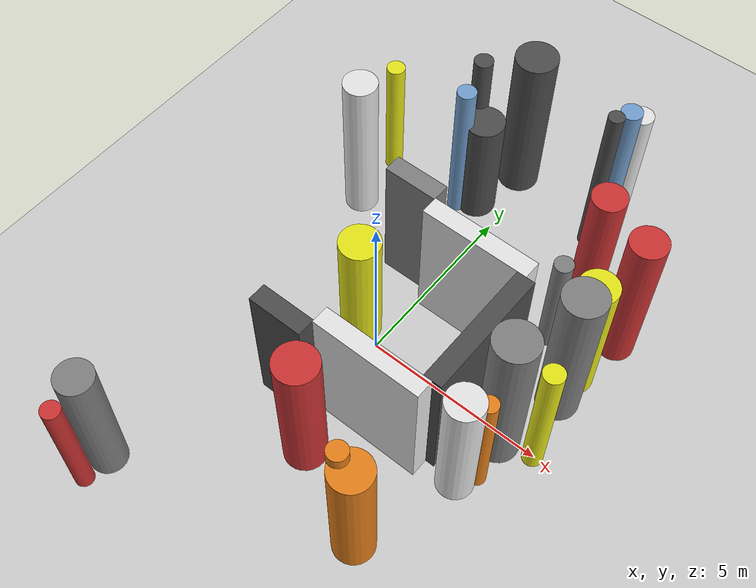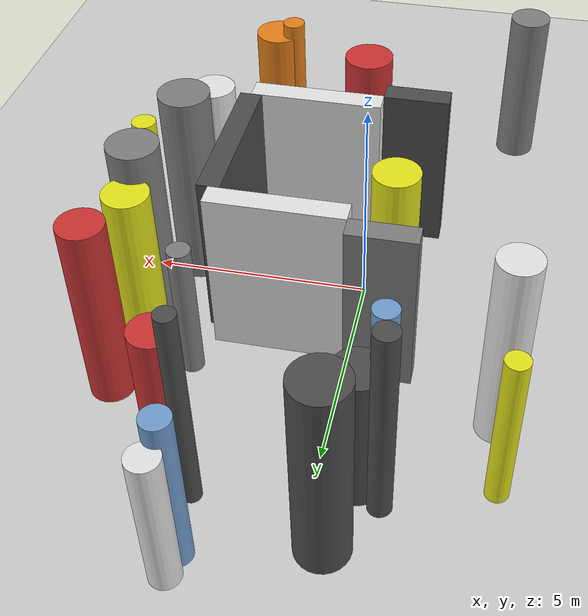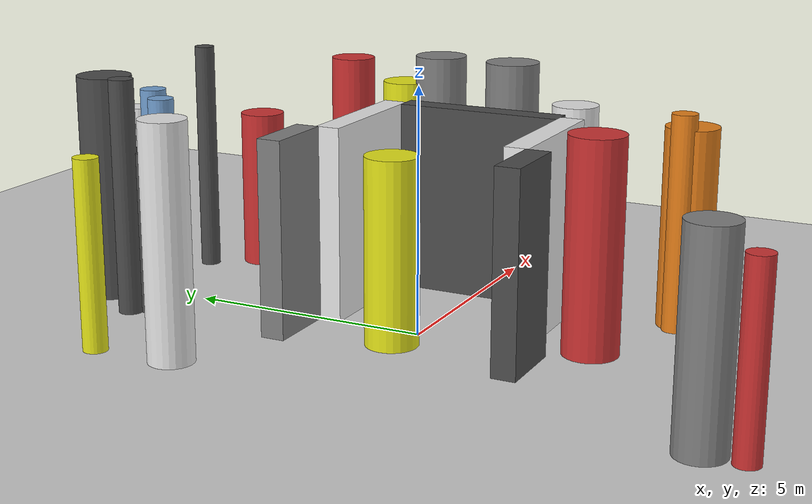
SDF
<?xml version='1.0'?>
<sdf version='1.6'>
  <world name='routeA_rl_v1__dense_recovery__rl_train__cul_de_sac_trap__000076'>
    <!-- Sun light -->
    <light name='sun' type='directional'>
      <cast_shadows>1</cast_shadows>
      <pose>0 0 10 0 0 0</pose>
      <diffuse>0.8 0.8 0.8 1</diffuse>
      <specular>0.2 0.2 0.2 1</specular>
      <attenuation>
        <range>1000</range>
        <constant>0.9</constant>
        <linear>0.01</linear>
        <quadratic>0.001</quadratic>
      </attenuation>
      <direction>-0.5 0.1 -0.9</direction>
    </light>

    <!-- Ground plane -->
    <model name='ground_plane'>
      <static>1</static>
      <link name='link'>
        <collision name='collision'>
          <geometry>
            <plane>
              <normal>0 0 1</normal>
              <size>100 100</size>
            </plane>
          </geometry>
          <surface>
            <contact>
              <collide_bitmask>65535</collide_bitmask>
              <ode/>
            </contact>
            <friction>
              <ode>
                <mu>100</mu>
                <mu2>50</mu2>
              </ode>
              <torsional><ode/></torsional>
            </friction>
            <bounce/>
          </surface>
          <max_contacts>10</max_contacts>
        </collision>
        <visual name='visual'>
          <cast_shadows>0</cast_shadows>
          <geometry>
            <plane>
              <normal>0 0 1</normal>
              <size>100 100</size>
            </plane>
          </geometry>
          <material>
            <script>
              <uri>file://media/materials/scripts/gazebo.material</uri>
              <n>Gazebo/Grey</n>
            </script>
          </material>
        </visual>
      </link>
    </model>

    <!-- Environment -->
    <magnetic_field>6e-06 2.3e-05 -4.2e-05</magnetic_field>
    <atmosphere type='adiabatic'/>
    <physics name='default_physics' default='0' type='ode'>
      <gravity>0 0 -9.8</gravity>
      <max_step_size>0.004</max_step_size>
      <real_time_factor>1</real_time_factor>
      <real_time_update_rate>250</real_time_update_rate>
    </physics>
    <scene>
      <ambient>0.4 0.4 0.4 1</ambient>
      <background>0.7 0.7 0.7 1</background>
      <shadows>1</shadows>
    </scene>
    <wind/>
    <spherical_coordinates>
      <surface_model>EARTH_WGS84</surface_model>
      <latitude_deg>0</latitude_deg>
      <longitude_deg>0</longitude_deg>
      <elevation>0</elevation>
      <heading_deg>0</heading_deg>
    </spherical_coordinates>

    <!-- ============ OBSTACLES (29) ============ -->
    <model name='trap_side_l'>
      <static>1</static>
      <link name='link'>
        <visual name='visual'>
          <geometry>
            <box>
              <size>3.0000 0.5000 4.0000</size>
            </box>
          </geometry>
          <material>
            <script>
              <n>Gazebo/White</n>
              <uri>file://media/materials/scripts/gazebo.material</uri>
            </script>
            <ambient>0.9 0.9 0.9 1</ambient>
          </material>
        </visual>
        <collision name='collision'>
          <geometry>
            <box>
              <size>3.0000 0.5000 4.0000</size>
            </box>
          </geometry>
          <max_contacts>10</max_contacts>
          <surface>
            <contact><ode/></contact>
            <bounce/>
            <friction>
              <ode><mu>1</mu><mu2>1</mu2></ode>
              <torsional><ode/></torsional>
            </friction>
          </surface>
        </collision>
      </link>
      <pose>1.5000 -2.0000 2.0000 0 0 0.0000</pose>
    </model>

    <model name='trap_side_r'>
      <static>1</static>
      <link name='link'>
        <visual name='visual'>
          <geometry>
            <box>
              <size>3.0000 0.5000 4.0000</size>
            </box>
          </geometry>
          <material>
            <script>
              <n>Gazebo/White</n>
              <uri>file://media/materials/scripts/gazebo.material</uri>
            </script>
            <ambient>0.9 0.9 0.9 1</ambient>
          </material>
        </visual>
        <collision name='collision'>
          <geometry>
            <box>
              <size>3.0000 0.5000 4.0000</size>
            </box>
          </geometry>
          <max_contacts>10</max_contacts>
          <surface>
            <contact><ode/></contact>
            <bounce/>
            <friction>
              <ode><mu>1</mu><mu2>1</mu2></ode>
              <torsional><ode/></torsional>
            </friction>
          </surface>
        </collision>
      </link>
      <pose>1.5000 2.0000 2.0000 0 0 0.0000</pose>
    </model>

    <model name='trap_back'>
      <static>1</static>
      <link name='link'>
        <visual name='visual'>
          <geometry>
            <box>
              <size>0.5000 3.5000 4.0000</size>
            </box>
          </geometry>
          <material>
            <script>
              <n>Gazebo/DarkGrey</n>
              <uri>file://media/materials/scripts/gazebo.material</uri>
            </script>
            <ambient>0.3 0.3 0.3 1</ambient>
          </material>
        </visual>
        <collision name='collision'>
          <geometry>
            <box>
              <size>0.5000 3.5000 4.0000</size>
            </box>
          </geometry>
          <max_contacts>10</max_contacts>
          <surface>
            <contact><ode/></contact>
            <bounce/>
            <friction>
              <ode><mu>1</mu><mu2>1</mu2></ode>
              <torsional><ode/></torsional>
            </friction>
          </surface>
        </collision>
      </link>
      <pose>3.0000 0.0000 2.0000 0 0 0.0000</pose>
    </model>

    <model name='trap_funnel_l'>
      <static>1</static>
      <link name='link'>
        <visual name='visual'>
          <geometry>
            <box>
              <size>1.5000 0.5000 4.0000</size>
            </box>
          </geometry>
          <material>
            <script>
              <n>Gazebo/DarkGrey</n>
              <uri>file://media/materials/scripts/gazebo.material</uri>
            </script>
            <ambient>0.3 0.3 0.3 1</ambient>
          </material>
        </visual>
        <collision name='collision'>
          <geometry>
            <box>
              <size>1.5000 0.5000 4.0000</size>
            </box>
          </geometry>
          <max_contacts>10</max_contacts>
          <surface>
            <contact><ode/></contact>
            <bounce/>
            <friction>
              <ode><mu>1</mu><mu2>1</mu2></ode>
              <torsional><ode/></torsional>
            </friction>
          </surface>
        </collision>
      </link>
      <pose>-0.7500 -2.4500 2.0000 0 0 0.0000</pose>
    </model>

    <model name='trap_funnel_r'>
      <static>1</static>
      <link name='link'>
        <visual name='visual'>
          <geometry>
            <box>
              <size>1.5000 0.5000 4.0000</size>
            </box>
          </geometry>
          <material>
            <script>
              <n>Gazebo/Grey</n>
              <uri>file://media/materials/scripts/gazebo.material</uri>
            </script>
            <ambient>0.5 0.5 0.5 1</ambient>
          </material>
        </visual>
        <collision name='collision'>
          <geometry>
            <box>
              <size>1.5000 0.5000 4.0000</size>
            </box>
          </geometry>
          <max_contacts>10</max_contacts>
          <surface>
            <contact><ode/></contact>
            <bounce/>
            <friction>
              <ode><mu>1</mu><mu2>1</mu2></ode>
              <torsional><ode/></torsional>
            </friction>
          </surface>
        </collision>
      </link>
      <pose>-0.7500 2.4500 2.0000 0 0 0.0000</pose>
    </model>

    <model name='trap_scatter_0'>
      <static>1</static>
      <link name='link'>
        <visual name='visual'>
          <geometry>
            <cylinder>
              <radius>0.5382</radius>
              <length>3.7646</length>
            </cylinder>
          </geometry>
          <material>
            <script>
              <n>Gazebo/Yellow</n>
              <uri>file://media/materials/scripts/gazebo.material</uri>
            </script>
            <ambient>0.9 0.9 0.1 1</ambient>
          </material>
        </visual>
        <collision name='collision'>
          <geometry>
            <cylinder>
              <radius>0.5382</radius>
              <length>3.7646</length>
            </cylinder>
          </geometry>
          <max_contacts>10</max_contacts>
          <surface>
            <contact><ode/></contact>
            <bounce/>
            <friction>
              <ode><mu>1</mu><mu2>1</mu2></ode>
              <torsional><ode/></torsional>
            </friction>
          </surface>
        </collision>
      </link>
      <pose>-0.6889 0.2276 1.8823 0 0 0.0000</pose>
    </model>

    <model name='trap_scatter_1'>
      <static>1</static>
      <link name='link'>
        <visual name='visual'>
          <geometry>
            <cylinder>
              <radius>0.2114</radius>
              <length>4.9675</length>
            </cylinder>
          </geometry>
          <material>
            <script>
              <n>Gazebo/DarkGrey</n>
              <uri>file://media/materials/scripts/gazebo.material</uri>
            </script>
            <ambient>0.3 0.3 0.3 1</ambient>
          </material>
        </visual>
        <collision name='collision'>
          <geometry>
            <cylinder>
              <radius>0.2114</radius>
              <length>4.9675</length>
            </cylinder>
          </geometry>
          <max_contacts>10</max_contacts>
          <surface>
            <contact><ode/></contact>
            <bounce/>
            <friction>
              <ode><mu>1</mu><mu2>1</mu2></ode>
              <torsional><ode/></torsional>
            </friction>
          </surface>
        </collision>
      </link>
      <pose>2.2836 6.3545 2.4837 0 0 0.0000</pose>
    </model>

    <model name='trap_scatter_2'>
      <static>1</static>
      <link name='link'>
        <visual name='visual'>
          <geometry>
            <cylinder>
              <radius>0.5692</radius>
              <length>4.8555</length>
            </cylinder>
          </geometry>
          <material>
            <script>
              <n>Gazebo/Grey</n>
              <uri>file://media/materials/scripts/gazebo.material</uri>
            </script>
            <ambient>0.5 0.5 0.5 1</ambient>
          </material>
        </visual>
        <collision name='collision'>
          <geometry>
            <cylinder>
              <radius>0.5692</radius>
              <length>4.8555</length>
            </cylinder>
          </geometry>
          <max_contacts>10</max_contacts>
          <surface>
            <contact><ode/></contact>
            <bounce/>
            <friction>
              <ode><mu>1</mu><mu2>1</mu2></ode>
              <torsional><ode/></torsional>
            </friction>
          </surface>
        </collision>
      </link>
      <pose>4.0518 -0.2404 2.4277 0 0 0.0000</pose>
    </model>

    <model name='trap_scatter_3'>
      <static>1</static>
      <link name='link'>
        <visual name='visual'>
          <geometry>
            <cylinder>
              <radius>0.5720</radius>
              <length>4.7101</length>
            </cylinder>
          </geometry>
          <material>
            <script>
              <n>Gazebo/DarkGrey</n>
              <uri>file://media/materials/scripts/gazebo.material</uri>
            </script>
            <ambient>0.3 0.3 0.3 1</ambient>
          </material>
        </visual>
        <collision name='collision'>
          <geometry>
            <cylinder>
              <radius>0.5720</radius>
              <length>4.7101</length>
            </cylinder>
          </geometry>
          <max_contacts>10</max_contacts>
          <surface>
            <contact><ode/></contact>
            <bounce/>
            <friction>
              <ode><mu>1</mu><mu2>1</mu2></ode>
              <torsional><ode/></torsional>
            </friction>
          </surface>
        </collision>
      </link>
      <pose>-0.4668 7.0229 2.3551 0 0 0.0000</pose>
    </model>

    <model name='trap_scatter_4'>
      <static>1</static>
      <link name='link'>
        <visual name='visual'>
          <geometry>
            <cylinder>
              <radius>0.2543</radius>
              <length>3.3442</length>
            </cylinder>
          </geometry>
          <material>
            <script>
              <n>Gazebo/Grey</n>
              <uri>file://media/materials/scripts/gazebo.material</uri>
            </script>
            <ambient>0.5 0.5 0.5 1</ambient>
          </material>
        </visual>
        <collision name='collision'>
          <geometry>
            <cylinder>
              <radius>0.2543</radius>
              <length>3.3442</length>
            </cylinder>
          </geometry>
          <max_contacts>10</max_contacts>
          <surface>
            <contact><ode/></contact>
            <bounce/>
            <friction>
              <ode><mu>1</mu><mu2>1</mu2></ode>
              <torsional><ode/></torsional>
            </friction>
          </surface>
        </collision>
      </link>
      <pose>3.2792 3.0410 1.6721 0 0 0.0000</pose>
    </model>

    <model name='trap_scatter_5'>
      <static>1</static>
      <link name='link'>
        <visual name='visual'>
          <geometry>
            <cylinder>
              <radius>0.5584</radius>
              <length>4.7804</length>
            </cylinder>
          </geometry>
          <material>
            <script>
              <n>Gazebo/Grey</n>
              <uri>file://media/materials/scripts/gazebo.material</uri>
            </script>
            <ambient>0.5 0.5 0.5 1</ambient>
          </material>
        </visual>
        <collision name='collision'>
          <geometry>
            <cylinder>
              <radius>0.5584</radius>
              <length>4.7804</length>
            </cylinder>
          </geometry>
          <max_contacts>10</max_contacts>
          <surface>
            <contact><ode/></contact>
            <bounce/>
            <friction>
              <ode><mu>1</mu><mu2>1</mu2></ode>
              <torsional><ode/></torsional>
            </friction>
          </surface>
        </collision>
      </link>
      <pose>4.5467 1.6544 2.3902 0 0 0.0000</pose>
    </model>

    <model name='trap_scatter_6'>
      <static>1</static>
      <link name='link'>
        <visual name='visual'>
          <geometry>
            <cylinder>
              <radius>0.5631</radius>
              <length>4.3001</length>
            </cylinder>
          </geometry>
          <material>
            <script>
              <n>Gazebo/Red</n>
              <uri>file://media/materials/scripts/gazebo.material</uri>
            </script>
            <ambient>0.8 0.2 0.2 1</ambient>
          </material>
        </visual>
        <collision name='collision'>
          <geometry>
            <cylinder>
              <radius>0.5631</radius>
              <length>4.3001</length>
            </cylinder>
          </geometry>
          <max_contacts>10</max_contacts>
          <surface>
            <contact><ode/></contact>
            <bounce/>
            <friction>
              <ode><mu>1</mu><mu2>1</mu2></ode>
              <torsional><ode/></torsional>
            </friction>
          </surface>
        </collision>
      </link>
      <pose>0.5504 -3.3923 2.1500 0 0 0.0000</pose>
    </model>

    <model name='trap_scatter_7'>
      <static>1</static>
      <link name='link'>
        <visual name='visual'>
          <geometry>
            <cylinder>
              <radius>0.2598</radius>
              <length>4.5256</length>
            </cylinder>
          </geometry>
          <material>
            <script>
              <n>Gazebo/Blue</n>
              <uri>file://media/materials/scripts/gazebo.material</uri>
            </script>
            <ambient>0.447 0.624 0.812 1</ambient>
          </material>
        </visual>
        <collision name='collision'>
          <geometry>
            <cylinder>
              <radius>0.2598</radius>
              <length>4.5256</length>
            </cylinder>
          </geometry>
          <max_contacts>10</max_contacts>
          <surface>
            <contact><ode/></contact>
            <bounce/>
            <friction>
              <ode><mu>1</mu><mu2>1</mu2></ode>
              <torsional><ode/></torsional>
            </friction>
          </surface>
        </collision>
      </link>
      <pose>-1.2248 5.0807 2.2628 0 0 0.0000</pose>
    </model>

    <model name='trap_scatter_8'>
      <static>1</static>
      <link name='link'>
        <visual name='visual'>
          <geometry>
            <cylinder>
              <radius>0.4858</radius>
              <length>4.5405</length>
            </cylinder>
          </geometry>
          <material>
            <script>
              <n>Gazebo/Red</n>
              <uri>file://media/materials/scripts/gazebo.material</uri>
            </script>
            <ambient>0.8 0.2 0.2 1</ambient>
          </material>
        </visual>
        <collision name='collision'>
          <geometry>
            <cylinder>
              <radius>0.4858</radius>
              <length>4.5405</length>
            </cylinder>
          </geometry>
          <max_contacts>10</max_contacts>
          <surface>
            <contact><ode/></contact>
            <bounce/>
            <friction>
              <ode><mu>1</mu><mu2>1</mu2></ode>
              <torsional><ode/></torsional>
            </friction>
          </surface>
        </collision>
      </link>
      <pose>4.7809 3.9759 2.2703 0 0 0.0000</pose>
    </model>

    <model name='trap_scatter_9'>
      <static>1</static>
      <link name='link'>
        <visual name='visual'>
          <geometry>
            <cylinder>
              <radius>0.4626</radius>
              <length>4.6670</length>
            </cylinder>
          </geometry>
          <material>
            <script>
              <n>Gazebo/White</n>
              <uri>file://media/materials/scripts/gazebo.material</uri>
            </script>
            <ambient>0.9 0.9 0.9 1</ambient>
          </material>
        </visual>
        <collision name='collision'>
          <geometry>
            <cylinder>
              <radius>0.4626</radius>
              <length>4.6670</length>
            </cylinder>
          </geometry>
          <max_contacts>10</max_contacts>
          <surface>
            <contact><ode/></contact>
            <bounce/>
            <friction>
              <ode><mu>1</mu><mu2>1</mu2></ode>
              <torsional><ode/></torsional>
            </friction>
          </surface>
        </collision>
      </link>
      <pose>-3.4046 3.5130 2.3335 0 0 0.0000</pose>
    </model>

    <model name='trap_scatter_10'>
      <static>1</static>
      <link name='link'>
        <visual name='visual'>
          <geometry>
            <cylinder>
              <radius>0.4890</radius>
              <length>4.1019</length>
            </cylinder>
          </geometry>
          <material>
            <script>
              <n>Gazebo/White</n>
              <uri>file://media/materials/scripts/gazebo.material</uri>
            </script>
            <ambient>0.9 0.9 0.9 1</ambient>
          </material>
        </visual>
        <collision name='collision'>
          <geometry>
            <cylinder>
              <radius>0.4890</radius>
              <length>4.1019</length>
            </cylinder>
          </geometry>
          <max_contacts>10</max_contacts>
          <surface>
            <contact><ode/></contact>
            <bounce/>
            <friction>
              <ode><mu>1</mu><mu2>1</mu2></ode>
              <torsional><ode/></torsional>
            </friction>
          </surface>
        </collision>
      </link>
      <pose>3.8783 -1.7366 2.0510 0 0 0.0000</pose>
    </model>

    <model name='trap_scatter_11'>
      <static>1</static>
      <link name='link'>
        <visual name='visual'>
          <geometry>
            <cylinder>
              <radius>0.2703</radius>
              <length>4.1490</length>
            </cylinder>
          </geometry>
          <material>
            <script>
              <n>Gazebo/Yellow</n>
              <uri>file://media/materials/scripts/gazebo.material</uri>
            </script>
            <ambient>0.9 0.9 0.1 1</ambient>
          </material>
        </visual>
        <collision name='collision'>
          <geometry>
            <cylinder>
              <radius>0.2703</radius>
              <length>4.1490</length>
            </cylinder>
          </geometry>
          <max_contacts>10</max_contacts>
          <surface>
            <contact><ode/></contact>
            <bounce/>
            <friction>
              <ode><mu>1</mu><mu2>1</mu2></ode>
              <torsional><ode/></torsional>
            </friction>
          </surface>
        </collision>
      </link>
      <pose>4.9575 -0.0125 2.0745 0 0 0.0000</pose>
    </model>

    <model name='trap_scatter_12'>
      <static>1</static>
      <link name='link'>
        <visual name='visual'>
          <geometry>
            <cylinder>
              <radius>0.4820</radius>
              <length>3.9712</length>
            </cylinder>
          </geometry>
          <material>
            <script>
              <n>Gazebo/Grey</n>
              <uri>file://media/materials/scripts/gazebo.material</uri>
            </script>
            <ambient>0.5 0.5 0.5 1</ambient>
          </material>
        </visual>
        <collision name='collision'>
          <geometry>
            <cylinder>
              <radius>0.4820</radius>
              <length>3.9712</length>
            </cylinder>
          </geometry>
          <max_contacts>10</max_contacts>
          <surface>
            <contact><ode/></contact>
            <bounce/>
            <friction>
              <ode><mu>1</mu><mu2>1</mu2></ode>
              <torsional><ode/></torsional>
            </friction>
          </surface>
        </collision>
      </link>
      <pose>-3.0692 -6.5692 1.9856 0 0 0.0000</pose>
    </model>

    <model name='trap_scatter_13'>
      <static>1</static>
      <link name='link'>
        <visual name='visual'>
          <geometry>
            <cylinder>
              <radius>0.2487</radius>
              <length>3.8089</length>
            </cylinder>
          </geometry>
          <material>
            <script>
              <n>Gazebo/Yellow</n>
              <uri>file://media/materials/scripts/gazebo.material</uri>
            </script>
            <ambient>0.9 0.9 0.1 1</ambient>
          </material>
        </visual>
        <collision name='collision'>
          <geometry>
            <cylinder>
              <radius>0.2487</radius>
              <length>3.8089</length>
            </cylinder>
          </geometry>
          <max_contacts>10</max_contacts>
          <surface>
            <contact><ode/></contact>
            <bounce/>
            <friction>
              <ode><mu>1</mu><mu2>1</mu2></ode>
              <torsional><ode/></torsional>
            </friction>
          </surface>
        </collision>
      </link>
      <pose>-3.5605 5.1647 1.9045 0 0 0.0000</pose>
    </model>

    <model name='trap_scatter_14'>
      <static>1</static>
      <link name='link'>
        <visual name='visual'>
          <geometry>
            <cylinder>
              <radius>0.2592</radius>
              <length>4.3988</length>
            </cylinder>
          </geometry>
          <material>
            <script>
              <n>Gazebo/Orange</n>
              <uri>file://media/materials/scripts/gazebo.material</uri>
            </script>
            <ambient>0.9 0.5 0.1 1</ambient>
          </material>
        </visual>
        <collision name='collision'>
          <geometry>
            <cylinder>
              <radius>0.2592</radius>
              <length>4.3988</length>
            </cylinder>
          </geometry>
          <max_contacts>10</max_contacts>
          <surface>
            <contact><ode/></contact>
            <bounce/>
            <friction>
              <ode><mu>1</mu><mu2>1</mu2></ode>
              <torsional><ode/></torsional>
            </friction>
          </surface>
        </collision>
      </link>
      <pose>2.6062 -4.4270 2.1994 0 0 0.0000</pose>
    </model>

    <model name='trap_scatter_15'>
      <static>1</static>
      <link name='link'>
        <visual name='visual'>
          <geometry>
            <cylinder>
              <radius>0.5014</radius>
              <length>4.1639</length>
            </cylinder>
          </geometry>
          <material>
            <script>
              <n>Gazebo/Yellow</n>
              <uri>file://media/materials/scripts/gazebo.material</uri>
            </script>
            <ambient>0.9 0.9 0.1 1</ambient>
          </material>
        </visual>
        <collision name='collision'>
          <geometry>
            <cylinder>
              <radius>0.5014</radius>
              <length>4.1639</length>
            </cylinder>
          </geometry>
          <max_contacts>10</max_contacts>
          <surface>
            <contact><ode/></contact>
            <bounce/>
            <friction>
              <ode><mu>1</mu><mu2>1</mu2></ode>
              <torsional><ode/></torsional>
            </friction>
          </surface>
        </collision>
      </link>
      <pose>4.4797 2.4847 2.0820 0 0 0.0000</pose>
    </model>

    <model name='trap_scatter_16'>
      <static>1</static>
      <link name='link'>
        <visual name='visual'>
          <geometry>
            <cylinder>
              <radius>0.5402</radius>
              <length>4.0767</length>
            </cylinder>
          </geometry>
          <material>
            <script>
              <n>Gazebo/Orange</n>
              <uri>file://media/materials/scripts/gazebo.material</uri>
            </script>
            <ambient>0.9 0.5 0.1 1</ambient>
          </material>
        </visual>
        <collision name='collision'>
          <geometry>
            <cylinder>
              <radius>0.5402</radius>
              <length>4.0767</length>
            </cylinder>
          </geometry>
          <max_contacts>10</max_contacts>
          <surface>
            <contact><ode/></contact>
            <bounce/>
            <friction>
              <ode><mu>1</mu><mu2>1</mu2></ode>
              <torsional><ode/></torsional>
            </friction>
          </surface>
        </collision>
      </link>
      <pose>3.0033 -4.4810 2.0384 0 0 0.0000</pose>
    </model>

    <model name='trap_scatter_18'>
      <static>1</static>
      <link name='link'>
        <visual name='visual'>
          <geometry>
            <cylinder>
              <radius>0.2544</radius>
              <length>4.8653</length>
            </cylinder>
          </geometry>
          <material>
            <script>
              <n>Gazebo/DarkGrey</n>
              <uri>file://media/materials/scripts/gazebo.material</uri>
            </script>
            <ambient>0.3 0.3 0.3 1</ambient>
          </material>
        </visual>
        <collision name='collision'>
          <geometry>
            <cylinder>
              <radius>0.2544</radius>
              <length>4.8653</length>
            </cylinder>
          </geometry>
          <max_contacts>10</max_contacts>
          <surface>
            <contact><ode/></contact>
            <bounce/>
            <friction>
              <ode><mu>1</mu><mu2>1</mu2></ode>
              <torsional><ode/></torsional>
            </friction>
          </surface>
        </collision>
      </link>
      <pose>-1.3609 5.9303 2.4327 0 0 0.0000</pose>
    </model>

    <model name='trap_scatter_19'>
      <static>1</static>
      <link name='link'>
        <visual name='visual'>
          <geometry>
            <cylinder>
              <radius>0.2332</radius>
              <length>3.7677</length>
            </cylinder>
          </geometry>
          <material>
            <script>
              <n>Gazebo/Orange</n>
              <uri>file://media/materials/scripts/gazebo.material</uri>
            </script>
            <ambient>0.9 0.5 0.1 1</ambient>
          </material>
        </visual>
        <collision name='collision'>
          <geometry>
            <cylinder>
              <radius>0.2332</radius>
              <length>3.7677</length>
            </cylinder>
          </geometry>
          <max_contacts>10</max_contacts>
          <surface>
            <contact><ode/></contact>
            <bounce/>
            <friction>
              <ode><mu>1</mu><mu2>1</mu2></ode>
              <torsional><ode/></torsional>
            </friction>
          </surface>
        </collision>
      </link>
      <pose>4.2222 -1.3014 1.8839 0 0 0.0000</pose>
    </model>

    <model name='trap_scatter_20'>
      <static>1</static>
      <link name='link'>
        <visual name='visual'>
          <geometry>
            <cylinder>
              <radius>0.3278</radius>
              <length>3.4706</length>
            </cylinder>
          </geometry>
          <material>
            <script>
              <n>Gazebo/White</n>
              <uri>file://media/materials/scripts/gazebo.material</uri>
            </script>
            <ambient>0.9 0.9 0.9 1</ambient>
          </material>
        </visual>
        <collision name='collision'>
          <geometry>
            <cylinder>
              <radius>0.3278</radius>
              <length>3.4706</length>
            </cylinder>
          </geometry>
          <max_contacts>10</max_contacts>
          <surface>
            <contact><ode/></contact>
            <bounce/>
            <friction>
              <ode><mu>1</mu><mu2>1</mu2></ode>
              <torsional><ode/></torsional>
            </friction>
          </surface>
        </collision>
      </link>
      <pose>2.2380 8.1411 1.7353 0 0 0.0000</pose>
    </model>

    <model name='trap_scatter_21'>
      <static>1</static>
      <link name='link'>
        <visual name='visual'>
          <geometry>
            <cylinder>
              <radius>0.2456</radius>
              <length>3.5457</length>
            </cylinder>
          </geometry>
          <material>
            <script>
              <n>Gazebo/Red</n>
              <uri>file://media/materials/scripts/gazebo.material</uri>
            </script>
            <ambient>0.8 0.2 0.2 1</ambient>
          </material>
        </visual>
        <collision name='collision'>
          <geometry>
            <cylinder>
              <radius>0.2456</radius>
              <length>3.5457</length>
            </cylinder>
          </geometry>
          <max_contacts>10</max_contacts>
          <surface>
            <contact><ode/></contact>
            <bounce/>
            <friction>
              <ode><mu>1</mu><mu2>1</mu2></ode>
              <torsional><ode/></torsional>
            </friction>
          </surface>
        </collision>
      </link>
      <pose>-3.0996 -7.3447 1.7728 0 0 0.0000</pose>
    </model>

    <model name='trap_scatter_22'>
      <static>1</static>
      <link name='link'>
        <visual name='visual'>
          <geometry>
            <cylinder>
              <radius>0.4743</radius>
              <length>3.4414</length>
            </cylinder>
          </geometry>
          <material>
            <script>
              <n>Gazebo/Red</n>
              <uri>file://media/materials/scripts/gazebo.material</uri>
            </script>
            <ambient>0.8 0.2 0.2 1</ambient>
          </material>
        </visual>
        <collision name='collision'>
          <geometry>
            <cylinder>
              <radius>0.4743</radius>
              <length>3.4414</length>
            </cylinder>
          </geometry>
          <max_contacts>10</max_contacts>
          <surface>
            <contact><ode/></contact>
            <bounce/>
            <friction>
              <ode><mu>1</mu><mu2>1</mu2></ode>
              <torsional><ode/></torsional>
            </friction>
          </surface>
        </collision>
      </link>
      <pose>3.0483 5.3665 1.7207 0 0 0.0000</pose>
    </model>

    <model name='trap_scatter_23'>
      <static>1</static>
      <link name='link'>
        <visual name='visual'>
          <geometry>
            <cylinder>
              <radius>0.5339</radius>
              <length>3.3603</length>
            </cylinder>
          </geometry>
          <material>
            <script>
              <n>Gazebo/DarkGrey</n>
              <uri>file://media/materials/scripts/gazebo.material</uri>
            </script>
            <ambient>0.3 0.3 0.3 1</ambient>
          </material>
        </visual>
        <collision name='collision'>
          <geometry>
            <cylinder>
              <radius>0.5339</radius>
              <length>3.3603</length>
            </cylinder>
          </geometry>
          <max_contacts>10</max_contacts>
          <surface>
            <contact><ode/></contact>
            <bounce/>
            <friction>
              <ode><mu>1</mu><mu2>1</mu2></ode>
              <torsional><ode/></torsional>
            </friction>
          </surface>
        </collision>
      </link>
      <pose>-0.8312 5.4771 1.6802 0 0 0.0000</pose>
    </model>

    <model name='trap_scatter_24'>
      <static>1</static>
      <link name='link'>
        <visual name='visual'>
          <geometry>
            <cylinder>
              <radius>0.2930</radius>
              <length>3.9328</length>
            </cylinder>
          </geometry>
          <material>
            <script>
              <n>Gazebo/Blue</n>
              <uri>file://media/materials/scripts/gazebo.material</uri>
            </script>
            <ambient>0.447 0.624 0.812 1</ambient>
          </material>
        </visual>
        <collision name='collision'>
          <geometry>
            <cylinder>
              <radius>0.2930</radius>
              <length>3.9328</length>
            </cylinder>
          </geometry>
          <max_contacts>10</max_contacts>
          <surface>
            <contact><ode/></contact>
            <bounce/>
            <friction>
              <ode><mu>1</mu><mu2>1</mu2></ode>
              <torsional><ode/></torsional>
            </friction>
          </surface>
        </collision>
      </link>
      <pose>2.1273 7.6680 1.9664 0 0 0.0000</pose>
    </model>

    <!-- GUI camera -->
    <gui fullscreen='0'>
      <camera name='user_camera'>
        <pose>-15 0 18 0 0.85 0.15</pose>
        <view_controller>orbit</view_controller>
        <projection_type>perspective</projection_type>
      </camera>
    </gui>
  </world>
</sdf>
